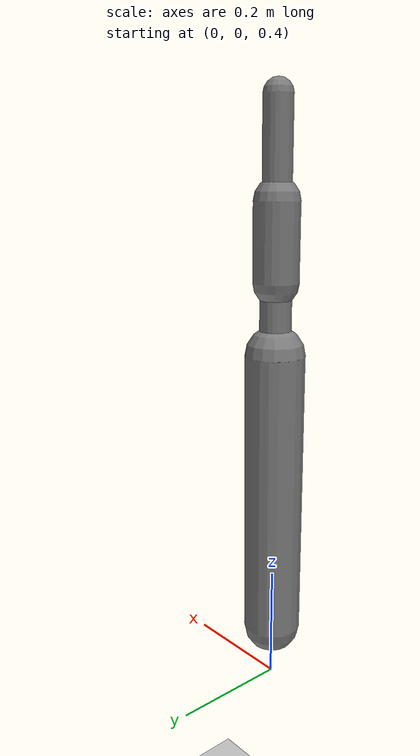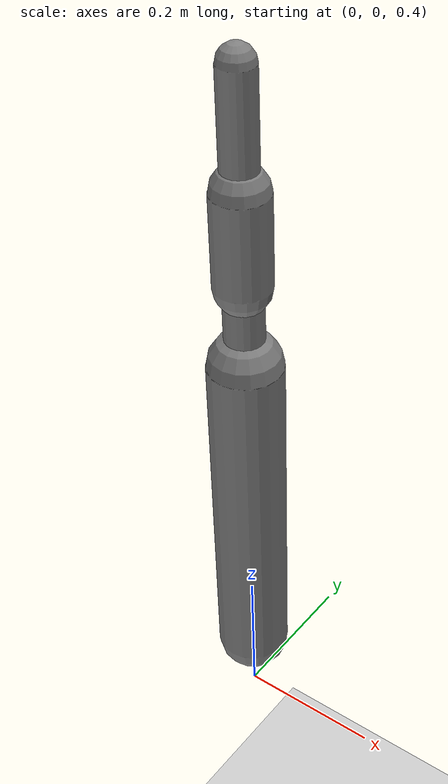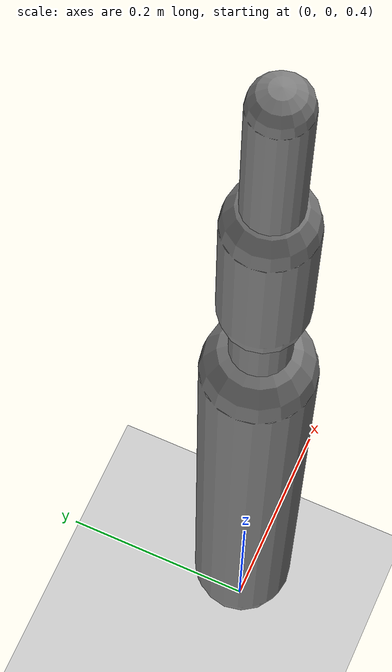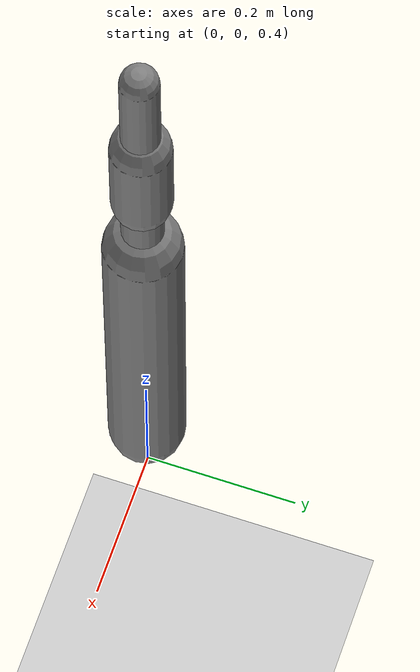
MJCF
<?xml version='1.0' encoding='UTF-8'?>
<mujoco model="RobotModel">
  <option gravity="0 0 -9.81" timestep="0.002" solver="CG" iterations="500" integrator="Euler"/>
  <worldbody>
    <geom name="Floor" type="plane" size="10 10 0.1" pos="0 0 0" rgba="0.8 0.8 0.8 1"/>
    <body name="Limb0" pos="0 0 0.5">
      <geom type="capsule" fromto="0 0 0 0 0 0.5" size="0.05" density="1000" contype="1" conaffinity="1"/>
      <body name="Limb0_1fd8b0c6" pos="0 0 0.5">
        <geom type="capsule" fromto="0 0 0 0 0 0.11789180649584957" size="0.02631607675592583" density="500.0" contype="1" conaffinity="1"/>
        <body name="Limb1_1fd8b0c6" pos="0 0 0.11789180649584957">
          <geom type="capsule" fromto="0 0 0 0 0 0.1362699227889181" size="0.029799725000111396" density="500.0" contype="1" conaffinity="1"/>
          <body name="Limb2_1fd8b0c6" pos="0 0 0.1362699227889181">
            <geom type="capsule" fromto="0 0 0 0 0 0.14459186844438357" size="0.02383866214755232" density="500.0" contype="1" conaffinity="1"/>
            <joint name="Joint_Limb1_1fd8b0c6_Limb2_1fd8b0c6_0" type="hinge" axis="0 1 0" range="-60 60"/>
          </body>
          <joint name="Joint_Limb0_1fd8b0c6_Limb1_1fd8b0c6_0" type="hinge" axis="1 0 0" range="-60 60"/>
        </body>
        <body name="Limb4_1fd8b0c6" pos="0 0 0.11789180649584957">
          <geom type="capsule" fromto="0 0 0 0 0 0.1261798498107555" size="0.03765671783118083" density="800" contype="1" conaffinity="1"/>
          <joint name="Joint_Limb0_1fd8b0c6_Limb4_1fd8b0c6_0" type="hinge" axis="0 1 0" range="-45 45"/>
        </body>
        <body name="Limb5_1fd8b0c6" pos="0 0 0.11789180649584957">
          <geom type="capsule" fromto="0 0 0 0 0 0.11689901853320554" size="0.036141271464439045" density="800" contype="1" conaffinity="1"/>
          <joint name="Joint_Limb0_1fd8b0c6_Limb5_1fd8b0c6_0" type="hinge" axis="0 1 0" range="-45 45"/>
        </body>
        <joint name="Joint_Limb0_Limb0_1fd8b0c6_0" type="hinge" axis="1 0 0" range="-60 60"/>
      </body>
      <body name="Limb3_1fd8b0c6" pos="0 0 0.5">
        <geom type="capsule" fromto="0 0 0 0 0 0.15801534179880963" size="0.024691967656634513" density="500.0" contype="1" conaffinity="1"/>
        <joint name="Joint_Limb0_Limb3_1fd8b0c6_0" type="hinge" axis="0 1 0" range="-60 60"/>
      </body>
    </body>
  </worldbody>
  <actuator>
    <position name="position_Actuator_Joint_Limb0_Limb0_1fd8b0c6_0" joint="Joint_Limb0_Limb0_1fd8b0c6_0" gear="1.0"/>
    <position name="position_Actuator_Joint_Limb0_1fd8b0c6_Limb1_1fd8b0c6_0" joint="Joint_Limb0_1fd8b0c6_Limb1_1fd8b0c6_0" gear="1.0"/>
    <position name="position_Actuator_Joint_Limb1_1fd8b0c6_Limb2_1fd8b0c6_0" joint="Joint_Limb1_1fd8b0c6_Limb2_1fd8b0c6_0" gear="1.0"/>
    <position name="position_Actuator_Joint_Limb0_1fd8b0c6_Limb4_1fd8b0c6_0" joint="Joint_Limb0_1fd8b0c6_Limb4_1fd8b0c6_0" gear="1.0"/>
    <position name="position_Actuator_Joint_Limb0_1fd8b0c6_Limb5_1fd8b0c6_0" joint="Joint_Limb0_1fd8b0c6_Limb5_1fd8b0c6_0" gear="1.0"/>
    <position name="position_Actuator_Joint_Limb0_Limb3_1fd8b0c6_0" joint="Joint_Limb0_Limb3_1fd8b0c6_0" gear="1.0"/>
  </actuator>
</mujoco>
